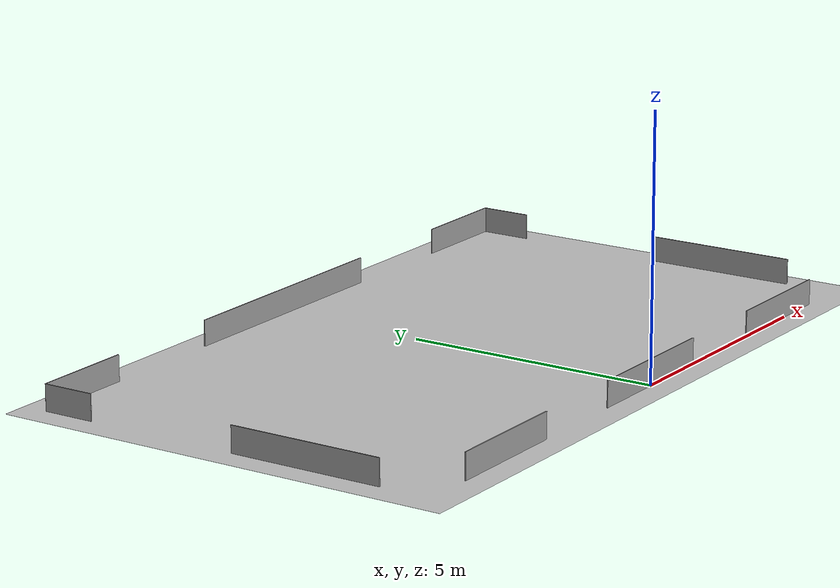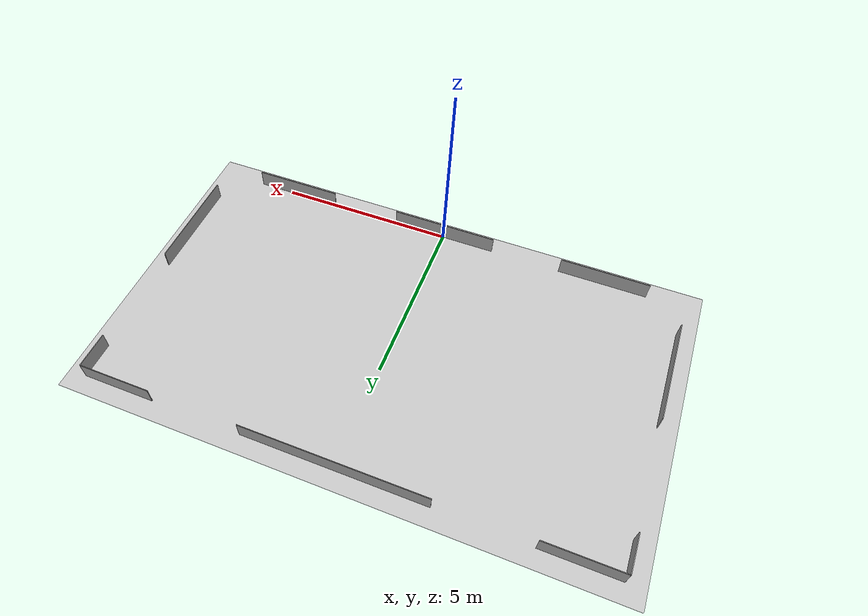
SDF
<?xml version="1.0" ?>
<sdf version="1.5">
  <model name="Logistics League Field 2017">
    <pose>0 4 0 0 0 0</pose>
    <static>true</static>
    <link name="field">
      <pose>0 0 0.01 0 0 0</pose>
      <collision name="collision">
        <geometry>
          <plane>
            <normal>0 0 1</normal>
            <size>15 9</size>
          </plane>
        </geometry>
        <surface>
          <friction>
            <ode>
              <mu>100</mu>
              <mu2>50</mu2>
            </ode>
          </friction>
        </surface>
      </collision>
      <visual name="carpet">
        <cast_shadows>false</cast_shadows>
        <geometry>
          <plane>
            <normal>0 0 1</normal>
            <size>15 9</size>
          </plane>
        </geometry>
        <material>
          <script>
            <uri>model://logistics_league_field_2017/materials/scripts/</uri>
            <uri>model://logistics_league_field_2017/materials/textures/</uri>
            <name>Logistics_League_Field/Image</name>
          </script>
        </material>
      </visual>
    </link>

    <link name="wall_bottom_middle_left_outer">
      <pose>-4.75 -4 0.25 0 0 1.570796327</pose>
      <visual name="wall_bottom_middle_left_outer-visual">
        <geometry>
          <box>
            <size>.02 2.5 .5</size>
          </box>
        </geometry>
        <cast_shadows>false</cast_shadows>
        <material>
          <script>
            <uri>file://media/materials/scripts/gazebo.material</uri>
            <name>Gazebo/Grey</name>
          </script>
        </material>
      </visual>
      <collision name="wall_bottom_middle_left_outer-collision">
        <geometry>
          <box>
            <size>.02 2.5 .5</size>
          </box>
        </geometry>
      </collision>
    </link>

    <link name="wall_bottom_middle">
      <pose>0 -4 0.25 0 0 1.570796327</pose>
      <visual name="wall_bottom_middle_right-visual">
        <geometry>
          <box>
            <size>.02 3 .5</size>
          </box>
        </geometry>
        <cast_shadows>false</cast_shadows>
        <material>
          <script>
            <uri>file://media/materials/scripts/gazebo.material</uri>
            <name>Gazebo/Grey</name>
          </script>
        </material>
      </visual>
      <collision name="wall_bottom_middle_right-collision">
        <geometry>
          <box>
            <size>.02 3 .5</size>
          </box>
        </geometry>
      </collision>
    </link>

    <link name="wall_bottom_middle_right_outer">
      <pose>4.75 -4 0.25 0 0 1.570796327</pose>
      <visual name="wall_bottom_middle_right_outer-visual">
        <geometry>
          <box>
            <size>.02 2.5 .5</size>
          </box>
        </geometry>
        <cast_shadows>false</cast_shadows>
        <material>
          <script>
            <uri>file://media/materials/scripts/gazebo.material</uri>
            <name>Gazebo/Grey</name>
          </script>
        </material>
      </visual>
      <collision name="wall_bottom_middle_right_outer-collision">
        <geometry>
          <box>
            <size>.02 2.5 .5</size>
          </box>
        </geometry>
      </collision>
    </link>

    <link name="wall_left_bottom">
      <pose>-7 -1.5 0.25 0 0 0</pose>
      <visual name="wall_left_bottom-visual">
        <geometry>
          <box>
            <size>.02 3 .5</size>
          </box>
        </geometry>
        <cast_shadows>false</cast_shadows>
        <material>
          <script>
            <uri>file://media/materials/scripts/gazebo.material</uri>
            <name>Gazebo/Grey</name>
          </script>
        </material>
      </visual>
      <collision name="wall_left_bottom-collision">
        <geometry>
          <box>
            <size>.02 3 .5</size>
          </box>
        </geometry>
      </collision>
    </link>

    <link name="wall_left_top">
      <pose>-7 3.5 0.25 0 0 0</pose>
      <visual name="wall_left_top-visual">
        <geometry>
          <box>
            <size>.02 1 .5</size>
          </box>
        </geometry>
        <cast_shadows>false</cast_shadows>
        <material>
          <script>
            <uri>file://media/materials/scripts/gazebo.material</uri>
            <name>Gazebo/Grey</name>
          </script>
        </material>
      </visual>
      <collision name="wall_left_top-collision">
        <geometry>
          <box>
            <size>.02 1 .5</size>
          </box>
        </geometry>
      </collision>
    </link>

    <link name="wall_right_bottom">
      <pose>7 -1.5 0.25 0 0 0</pose>
      <visual name="wall_right_bottom-visual">
        <geometry>
          <box>
            <size>.02 3 .5</size>
          </box>
        </geometry>
        <cast_shadows>false</cast_shadows>
        <material>
          <script>
            <uri>file://media/materials/scripts/gazebo.material</uri>
            <name>Gazebo/Grey</name>
          </script>
        </material>
      </visual>
      <collision name="wall_right_bottom-collision">
        <geometry>
          <box>
            <size>.02 3 .5</size>
          </box>
        </geometry>
      </collision>
    </link>

    <link name="wall_right_top">
      <pose>7 3.5 0.25 0 0 0</pose>
      <visual name="wall_right_top-visual">
        <geometry>
          <box>
            <size>.02 1 .5</size>
          </box>
        </geometry>
        <cast_shadows>false</cast_shadows>
        <material>
          <script>
            <uri>file://media/materials/scripts/gazebo.material</uri>
            <name>Gazebo/Grey</name>
          </script>
        </material>
      </visual>
      <collision name="wall_right_top-collision">
        <geometry>
          <box>
            <size>.02 1 .5</size>
          </box>
        </geometry>
      </collision>
    </link>

    <link name="wall_top_middle">
      <pose>0 4 0.25 0 0 1.570796327</pose>
      <visual name="wall_top_middle-visual">
        <geometry>
          <box>
            <size>.02 5 .5</size>
          </box>
        </geometry>
        <cast_shadows>false</cast_shadows>
        <material>
          <script>
            <uri>file://media/materials/scripts/gazebo.material</uri>
            <name>Gazebo/Grey</name>
          </script>
        </material>
      </visual>
      <collision name="wall_top_middle-collision">
        <geometry>
          <box>
            <size>.02 5 .5</size>
          </box>
        </geometry>
      </collision>
    </link>

    <link name="wall_top_left">
      <pose>-6 4 0.25 0 0 1.570796327</pose>
      <visual name="wall_top_left-visual">
        <geometry>
          <box>
            <size>.02 2 .5</size>
          </box>
        </geometry>
        <cast_shadows>false</cast_shadows>
        <material>
          <script>
            <uri>file://media/materials/scripts/gazebo.material</uri>
            <name>Gazebo/Grey</name>
          </script>
        </material>
      </visual>
      <collision name="wall_top_left-collision">
        <geometry>
          <box>
            <size>.02 2 .5</size>
          </box>
        </geometry>
      </collision>
    </link>

    <link name="wall_top_right">
      <pose>6 4 0.25 0 0 1.570796327</pose>
      <visual name="wall_top_right-visual">
        <geometry>
          <box>
             <size>.02 2 .5</size>
          </box>
        </geometry>
        <cast_shadows>false</cast_shadows>
        <material>
          <script>
            <uri>file://media/materials/scripts/gazebo.material</uri>
            <name>Gazebo/Grey</name>
          </script>
        </material>
      </visual>
      <collision name="wall_top_right-collision">
        <geometry>
          <box>
            <size>.02 2 .5</size>
          </box>
        </geometry>
      </collision>
    </link>

  </model>
</sdf>
